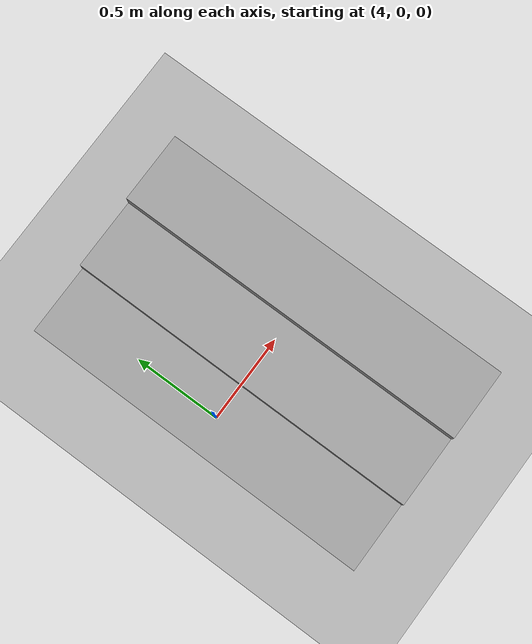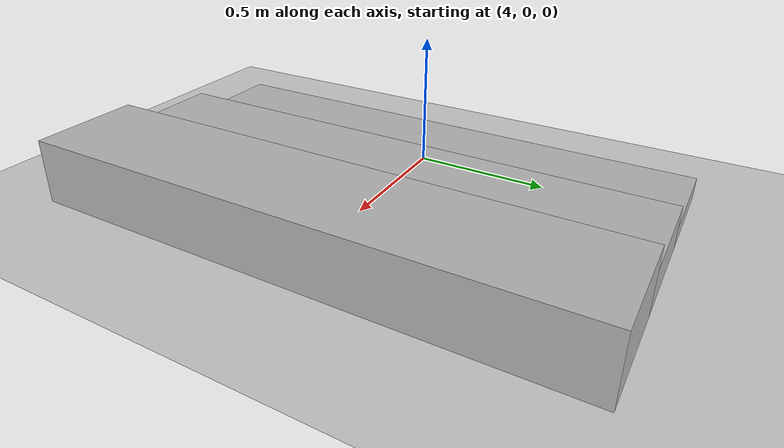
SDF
<?xml version="1.0"?>
<sdf version="1.6">
  <world name="m20_flat">
    <physics name="ode_1khz" type="ode" default="true">
      <max_step_size>0.001</max_step_size>
      <real_time_factor>1.0</real_time_factor>
      <real_time_update_rate>1000</real_time_update_rate>
      <ode>
        <solver>
          <type>quick</type>
          <iters>100</iters>
          <sor>1.3</sor>
        </solver>
        <constraints>
          <cfm>0.0</cfm>
          <erp>0.2</erp>
          <contact_max_correcting_vel>10.0</contact_max_correcting_vel>
          <contact_surface_layer>0.001</contact_surface_layer>
        </constraints>
      </ode>
    </physics>
    <gravity>0 0 -9.81</gravity>
    <!-- /gazebo/get_entity_state, /gazebo/set_entity_state: ground-truth pose for evaluation -->
    <plugin name="gazebo_ros_state" filename="libgazebo_ros_state.so">
      <ros><namespace>/gazebo</namespace></ros>
      <update_rate>200</update_rate>
    </plugin>
    <include>
      <uri>model://sun</uri>
    </include>
    <model name="ground_plane">
      <static>true</static>
      <link name="link">
        <collision name="collision">
          <geometry><plane><normal>0 0 1</normal><size>200 200</size></plane></geometry>
          <surface>
            <friction><ode><mu>1.0</mu><mu2>1.0</mu2></ode></friction>
            <contact><ode><kp>1e6</kp><kd>100</kd></ode></contact>
          </surface>
        </collision>
        <visual name="visual">
          <cast_shadows>false</cast_shadows>
          <geometry><plane><normal>0 0 1</normal><size>200 200</size></plane></geometry>
          <material>
            <script><uri>file://media/materials/scripts/gazebo.material</uri><name>Gazebo/Grey</name></script>
          </material>
        </visual>
      </link>
    </model>
    <!-- a few steps for terrain tests, well away from the spawn point -->
    <model name="steps">
      <static>true</static>
      <pose>4 0 0 0 0 0</pose>
      <link name="link">
        <collision name="s1"><pose>0 0 0.04 0 0 0</pose><geometry><box><size>0.4 2 0.08</size></box></geometry></collision>
        <visual name="v1"><pose>0 0 0.04 0 0 0</pose><geometry><box><size>0.4 2 0.08</size></box></geometry></visual>
        <collision name="s2"><pose>0.4 0 0.08 0 0 0</pose><geometry><box><size>0.4 2 0.16</size></box></geometry></collision>
        <visual name="v2"><pose>0.4 0 0.08 0 0 0</pose><geometry><box><size>0.4 2 0.16</size></box></geometry></visual>
        <collision name="s3"><pose>0.8 0 0.12 0 0 0</pose><geometry><box><size>0.4 2 0.24</size></box></geometry></collision>
        <visual name="v3"><pose>0.8 0 0.12 0 0 0</pose><geometry><box><size>0.4 2 0.24</size></box></geometry></visual>
      </link>
    </model>
  </world>
</sdf>
